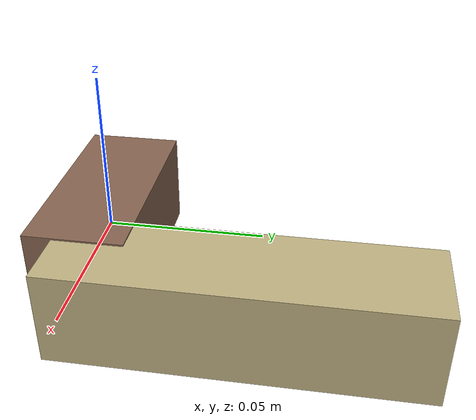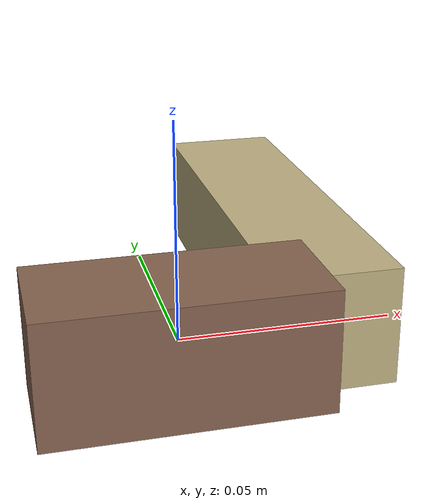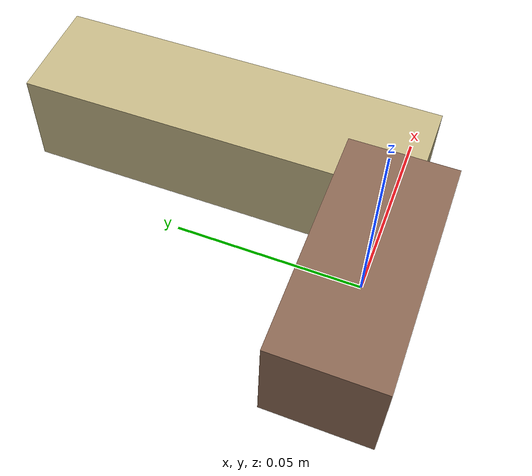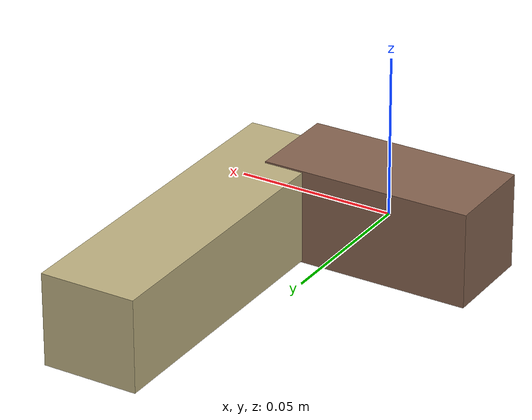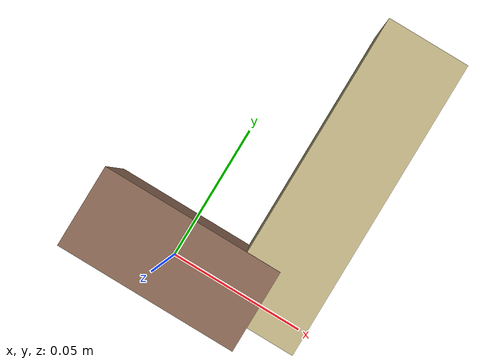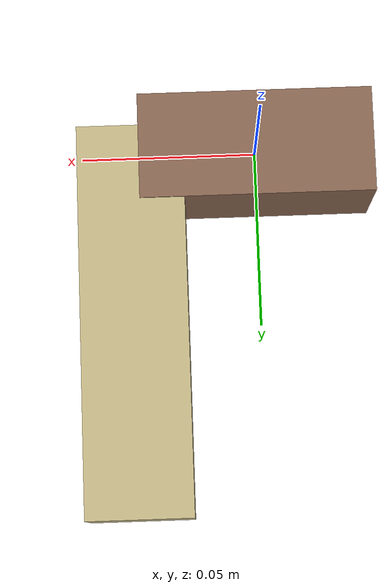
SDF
<sdf version="1.4"><world name="default"><model name="object0"><link name="link1"><pose>0 0 0 0 0 0</pose><inertial><pose>0 0 0 0 0 0</pose><mass>0.0358718926439805</mass><inertia><ixx>5.380783896597075e-06</ixx><ixy>0</ixy><iyy>1.5881889701724165e-05</iyy><ixz>0</ixz><iyz>0</iyz><izz>1.5881889701724165e-05</izz></inertia></inertial><visual name="link1_visual"><pose>0 0  0 0 0 0</pose><geometry><box><size>0.06642943082218611 0.03 0.03</size></box></geometry><material><diffuse>0.5228441563669891 0.3890543728997943 0.3110063857853481 1</diffuse></material></visual><collision><pose>0 0  0 0 0 0</pose><geometry><box><size>0.06642943082218611 0.03 0.03</size></box></geometry></collision></link><link name="link2"><pose>0.035611701293183244 0.04899049884604455 0 0 0 0</pose><inertial><pose>0 0 0 0 0 0</pose><mass>0.05952415113562186</mass><inertia><ixx>6.444299360453386e-05</ixx><ixy>0</ixy><iyy>8.635962260593138e-06</iyy><ixz>0</ixz><iyz>0</iyz><izz>6.4735654014284e-05</izz></inertia></inertial><visual name="link2_visual"><pose>0 0  0 0 0 0</pose><geometry><box><size>0.03 0.11022990951041085 0.028999999999999998</size></box></geometry><material><diffuse>0.7458880708506166 0.6940925032938704 0.5096782228272455 1</diffuse></material></visual><collision><pose>0 0  0 0 0 0</pose><geometry><box><size>0.03 0.11022990951041085 0.028999999999999998</size></box></geometry></collision></link><joint name="link_joint_0" type="fixed"><parent>link1</parent><child>link2</child><pose>0 0 0 0 0 0</pose><axis><xyz>0 0 1</xyz></axis></joint></model></world></sdf>
